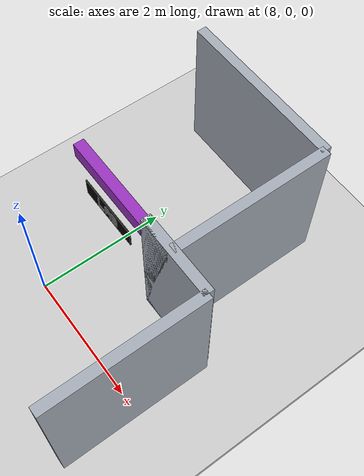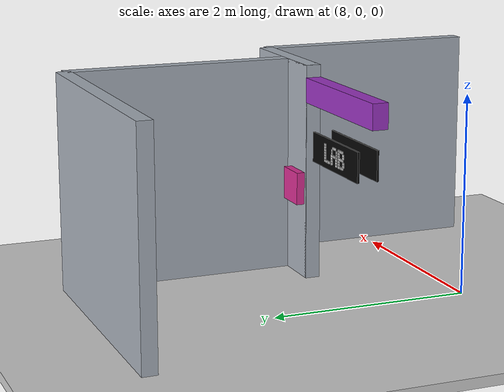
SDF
<sdf version="1.9">
 <world name="default">
  <model name="ground_plane">
   <static>true</static>
   <pose>5.15 0 -0.05 0 0 0</pose>
   <link name="body">
    <collision name="collision"><geometry><box><size>14.3 12 0.1</size></box></geometry></collision>
    <visual name="visual">
     <geometry><box><size>14.3 12 0.1</size></box></geometry>
     <material><ambient>0.8 0.8 0.8 1</ambient><diffuse>0.8 0.8 0.8 1</diffuse></material>
    </visual>
   </link>
  </model>
  <model name="end_wall">
   <static>true</static>
   <pose>10.3 0 1.1 0 0 0</pose>
   <link name="body">
    <collision name="collision"><geometry><box><size>0.15 2.3 2.2</size></box></geometry></collision>
    <visual name="visual">
     <geometry><box><size>0.15 2.3 2.2</size></box></geometry>
     <material><ambient>0.65 0.68 0.72 1</ambient><diffuse>0.65 0.68 0.72 1</diffuse></material>
    </visual>
   </link>
  </model>
  <model name="room_1_2_1">
   <static>true</static>
   <pose>9.600000000000001 2.3499999999999996 1.1 0 0 0</pose>
   <link name="body">
    <collision name="collision"><geometry><box><size>0.15 2.4 2.2</size></box></geometry></collision>
    <visual name="visual">
     <geometry><box><size>0.15 2.4 2.2</size></box></geometry>
     <material><ambient>0.65 0.68 0.72 1</ambient><diffuse>0.65 0.68 0.72 1</diffuse></material>
    </visual>
   </link>
  </model>
  <model name="room_end_1_2">
   <static>true</static>
   <pose>8.3 3.55 1.1 0 0 0</pose>
   <link name="body">
    <collision name="collision"><geometry><box><size>2.6 0.15 2.2</size></box></geometry></collision>
    <visual name="visual">
     <geometry><box><size>2.6 0.15 2.2</size></box></geometry>
     <material><ambient>0.65 0.68 0.72 1</ambient><diffuse>0.65 0.68 0.72 1</diffuse></material>
    </visual>
   </link>
  </model>
  <model name="jamb_1_2_1">
   <static>true</static>
   <pose>9.325000000000001 1.15 1.1 0 0 0</pose>
   <link name="body">
    <collision name="collision"><geometry><box><size>0.55 0.15 2.2</size></box></geometry></collision>
    <visual name="visual">
     <geometry><box><size>0.55 0.15 2.2</size></box></geometry>
     <material><ambient>0.65 0.68 0.72 1</ambient><diffuse>0.65 0.68 0.72 1</diffuse></material>
    </visual>
   </link>
  </model>
  <model name="hall_end_1">
   <static>true</static>
   <pose>9.675 1.15 1.1 0 0 0</pose>
   <link name="body">
    <collision name="collision"><geometry><box><size>1.25 0.15 2.2</size></box></geometry></collision>
    <visual name="visual">
     <geometry><box><size>1.25 0.15 2.2</size></box></geometry>
     <material><ambient>0.65 0.68 0.72 1</ambient><diffuse>0.65 0.68 0.72 1</diffuse></material>
    </visual>
   </link>
  </model>
  <model name="r3geo_base_r009_left_2_lintel">
   <static>true</static>
   <pose>8.3 1.15 1.95 0 0 0</pose>
   <link name="body">
    <collision name="collision"><geometry><box><size>1.5 0.16 0.25</size></box></geometry></collision>
    <visual name="visual">
     <geometry><box><size>1.5 0.16 0.25</size></box></geometry>
     <material><ambient>0.6 0.2 0.75 1</ambient><diffuse>0.6 0.2 0.75 1</diffuse></material>
    </visual>
   </link>
  </model>
  <model name="r3geo_base_r009_left_2_entrance_sign">
   <static>true</static>
   <pose>8.83 1.45 1.05 0 0 0</pose>
   <link name="body">
    <visual name="visual">
     <geometry><box><size>0.32 0.08 0.32</size></box></geometry>
     <material><ambient>0.84 0.18 0.57 1</ambient><diffuse>0.84 0.18 0.57 1</diffuse></material>
    </visual>
   </link>
  </model>
  <model name="readable_r3geo_base_r009_left_2_entrance_corridor">
   <static>true</static>
   <pose>8.3 1.05 1.43 0 0 0</pose>
   <link name="lettering">
    <visual name="backboard">
     <geometry><box><size>1.02 0.018 0.3</size></box></geometry>
     <material>
      <ambient>.015 .015 .015 1</ambient>
      <diffuse>.015 .015 .015 1</diffuse>
      <emissive>.015 .015 .015 1</emissive>
     </material>
     <cast_shadows>false</cast_shadows>
    </visual>
    <visual name="letter_0_0_0">
     <pose>-0.208 -0.014 0.078 0 0 0</pose>
     <geometry><box><size>0.024439999999999996 0.008 0.024439999999999996</size></box></geometry>
     <material>
      <ambient>.96 .96 .96 1</ambient>
      <diffuse>.96 .96 .96 1</diffuse>
      <emissive>.96 .96 .96 1</emissive>
     </material>
     <cast_shadows>false</cast_shadows>
    </visual>
    <visual name="letter_0_1_0">
     <pose>-0.208 -0.014 0.052 0 0 0</pose>
     <geometry><box><size>0.024439999999999996 0.008 0.024439999999999996</size></box></geometry>
     <material>
      <ambient>.96 .96 .96 1</ambient>
      <diffuse>.96 .96 .96 1</diffuse>
      <emissive>.96 .96 .96 1</emissive>
     </material>
     <cast_shadows>false</cast_shadows>
    </visual>
    <visual name="letter_0_2_0">
     <pose>-0.208 -0.014 0.026 0 0 0</pose>
     <geometry><box><size>0.024439999999999996 0.008 0.024439999999999996</size></box></geometry>
     <material>
      <ambient>.96 .96 .96 1</ambient>
      <diffuse>.96 .96 .96 1</diffuse>
      <emissive>.96 .96 .96 1</emissive>
     </material>
     <cast_shadows>false</cast_shadows>
    </visual>
    <visual name="letter_0_3_0">
     <pose>-0.208 -0.014 0 0 0 0</pose>
     <geometry><box><size>0.024439999999999996 0.008 0.024439999999999996</size></box></geometry>
     <material>
      <ambient>.96 .96 .96 1</ambient>
      <diffuse>.96 .96 .96 1</diffuse>
      <emissive>.96 .96 .96 1</emissive>
     </material>
     <cast_shadows>false</cast_shadows>
    </visual>
    <visual name="letter_0_4_0">
     <pose>-0.208 -0.014 -0.026 0 0 0</pose>
     <geometry><box><size>0.024439999999999996 0.008 0.024439999999999996</size></box></geometry>
     <material>
      <ambient>.96 .96 .96 1</ambient>
      <diffuse>.96 .96 .96 1</diffuse>
      <emissive>.96 .96 .96 1</emissive>
     </material>
     <cast_shadows>false</cast_shadows>
    </visual>
    <visual name="letter_0_5_0">
     <pose>-0.208 -0.014 -0.052 0 0 0</pose>
     <geometry><box><size>0.024439999999999996 0.008 0.024439999999999996</size></box></geometry>
     <material>
      <ambient>.96 .96 .96 1</ambient>
      <diffuse>.96 .96 .96 1</diffuse>
      <emissive>.96 .96 .96 1</emissive>
     </material>
     <cast_shadows>false</cast_shadows>
    </visual>
    <visual name="letter_0_6_0">
     <pose>-0.208 -0.014 -0.078 0 0 0</pose>
     <geometry><box><size>0.024439999999999996 0.008 0.024439999999999996</size></box></geometry>
     <material>
      <ambient>.96 .96 .96 1</ambient>
      <diffuse>.96 .96 .96 1</diffuse>
      <emissive>.96 .96 .96 1</emissive>
     </material>
     <cast_shadows>false</cast_shadows>
    </visual>
    <visual name="letter_0_6_1">
     <pose>-0.182 -0.014 -0.078 0 0 0</pose>
     <geometry><box><size>0.024439999999999996 0.008 0.024439999999999996</size></box></geometry>
     <material>
      <ambient>.96 .96 .96 1</ambient>
      <diffuse>.96 .96 .96 1</diffuse>
      <emissive>.96 .96 .96 1</emissive>
     </material>
     <cast_shadows>false</cast_shadows>
    </visual>
    <visual name="letter_0_6_2">
     <pose>-0.156 -0.014 -0.078 0 0 0</pose>
     <geometry><box><size>0.024439999999999996 0.008 0.024439999999999996</size></box></geometry>
     <material>
      <ambient>.96 .96 .96 1</ambient>
      <diffuse>.96 .96 .96 1</diffuse>
      <emissive>.96 .96 .96 1</emissive>
     </material>
     <cast_shadows>false</cast_shadows>
    </visual>
    <visual name="letter_0_6_3">
     <pose>-0.13 -0.014 -0.078 0 0 0</pose>
     <geometry><box><size>0.024439999999999996 0.008 0.024439999999999996</size></box></geometry>
     <material>
      <ambient>.96 .96 .96 1</ambient>
      <diffuse>.96 .96 .96 1</diffuse>
      <emissive>.96 .96 .96 1</emissive>
     </material>
     <cast_shadows>false</cast_shadows>
    </visual>
    <visual name="letter_0_6_4">
     <pose>-0.104 -0.014 -0.078 0 0 0</pose>
     <geometry><box><size>0.024439999999999996 0.008 0.024439999999999996</size></box></geometry>
     <material>
      <ambient>.96 .96 .96 1</ambient>
      <diffuse>.96 .96 .96 1</diffuse>
      <emissive>.96 .96 .96 1</emissive>
     </material>
     <cast_shadows>false</cast_shadows>
    </visual>
    <visual name="letter_1_0_1">
     <pose>-0.026 -0.014 0.078 0 0 0</pose>
     <geometry><box><size>0.024439999999999996 0.008 0.024439999999999996</size></box></geometry>
     <material>
      <ambient>.96 .96 .96 1</ambient>
      <diffuse>.96 .96 .96 1</diffuse>
      <emissive>.96 .96 .96 1</emissive>
     </material>
     <cast_shadows>false</cast_shadows>
    </visual>
    <visual name="letter_1_0_2">
     <pose>0 -0.014 0.078 0 0 0</pose>
     <geometry><box><size>0.024439999999999996 0.008 0.024439999999999996</size></box></geometry>
     <material>
      <ambient>.96 .96 .96 1</ambient>
      <diffuse>.96 .96 .96 1</diffuse>
      <emissive>.96 .96 .96 1</emissive>
     </material>
     <cast_shadows>false</cast_shadows>
    </visual>
    <visual name="letter_1_0_3">
     <pose>0.026 -0.014 0.078 0 0 0</pose>
     <geometry><box><size>0.024439999999999996 0.008 0.024439999999999996</size></box></geometry>
     <material>
      <ambient>.96 .96 .96 1</ambient>
      <diffuse>.96 .96 .96 1</diffuse>
      <emissive>.96 .96 .96 1</emissive>
     </material>
     <cast_shadows>false</cast_shadows>
    </visual>
    <visual name="letter_1_1_0">
     <pose>-0.052 -0.014 0.052 0 0 0</pose>
     <geometry><box><size>0.024439999999999996 0.008 0.024439999999999996</size></box></geometry>
     <material>
      <ambient>.96 .96 .96 1</ambient>
      <diffuse>.96 .96 .96 1</diffuse>
      <emissive>.96 .96 .96 1</emissive>
     </material>
     <cast_shadows>false</cast_shadows>
    </visual>
    <visual name="letter_1_1_4">
     <pose>0.052 -0.014 0.052 0 0 0</pose>
     <geometry><box><size>0.024439999999999996 0.008 0.024439999999999996</size></box></geometry>
     <material>
      <ambient>.96 .96 .96 1</ambient>
      <diffuse>.96 .96 .96 1</diffuse>
      <emissive>.96 .96 .96 1</emissive>
     </material>
     <cast_shadows>false</cast_shadows>
    </visual>
    <visual name="letter_1_2_0">
     <pose>-0.052 -0.014 0.026 0 0 0</pose>
     <geometry><box><size>0.024439999999999996 0.008 0.024439999999999996</size></box></geometry>
     <material>
      <ambient>.96 .96 .96 1</ambient>
      <diffuse>.96 .96 .96 1</diffuse>
      <emissive>.96 .96 .96 1</emissive>
     </material>
     <cast_shadows>false</cast_shadows>
    </visual>
    <visual name="letter_1_2_4">
     <pose>0.052 -0.014 0.026 0 0 0</pose>
     <geometry><box><size>0.024439999999999996 0.008 0.024439999999999996</size></box></geometry>
     <material>
      <ambient>.96 .96 .96 1</ambient>
      <diffuse>.96 .96 .96 1</diffuse>
      <emissive>.96 .96 .96 1</emissive>
     </material>
     <cast_shadows>false</cast_shadows>
    </visual>
    <visual name="letter_1_3_0">
     <pose>-0.052 -0.014 0 0 0 0</pose>
     <geometry><box><size>0.024439999999999996 0.008 0.024439999999999996</size></box></geometry>
     <material>
      <ambient>.96 .96 .96 1</ambient>
      <diffuse>.96 .96 .96 1</diffuse>
      <emissive>.96 .96 .96 1</emissive>
     </material>
     <cast_shadows>false</cast_shadows>
    </visual>
    <visual name="letter_1_3_1">
     <pose>-0.026 -0.014 0 0 0 0</pose>
     <geometry><box><size>0.024439999999999996 0.008 0.024439999999999996</size></box></geometry>
     <material>
      <ambient>.96 .96 .96 1</ambient>
      <diffuse>.96 .96 .96 1</diffuse>
      <emissive>.96 .96 .96 1</emissive>
     </material>
     <cast_shadows>false</cast_shadows>
    </visual>
    <visual name="letter_1_3_2">
     <pose>0 -0.014 0 0 0 0</pose>
     <geometry><box><size>0.024439999999999996 0.008 0.024439999999999996</size></box></geometry>
     <material>
      <ambient>.96 .96 .96 1</ambient>
      <diffuse>.96 .96 .96 1</diffuse>
      <emissive>.96 .96 .96 1</emissive>
     </material>
     <cast_shadows>false</cast_shadows>
    </visual>
    <visual name="letter_1_3_3">
     <pose>0.026 -0.014 0 0 0 0</pose>
     <geometry><box><size>0.024439999999999996 0.008 0.024439999999999996</size></box></geometry>
     <material>
      <ambient>.96 .96 .96 1</ambient>
      <diffuse>.96 .96 .96 1</diffuse>
      <emissive>.96 .96 .96 1</emissive>
     </material>
     <cast_shadows>false</cast_shadows>
    </visual>
    <visual name="letter_1_3_4">
     <pose>0.052 -0.014 0 0 0 0</pose>
     <geometry><box><size>0.024439999999999996 0.008 0.024439999999999996</size></box></geometry>
     <material>
      <ambient>.96 .96 .96 1</ambient>
      <diffuse>.96 .96 .96 1</diffuse>
      <emissive>.96 .96 .96 1</emissive>
     </material>
     <cast_shadows>false</cast_shadows>
    </visual>
    <visual name="letter_1_4_0">
     <pose>-0.052 -0.014 -0.026 0 0 0</pose>
     <geometry><box><size>0.024439999999999996 0.008 0.024439999999999996</size></box></geometry>
     <material>
      <ambient>.96 .96 .96 1</ambient>
      <diffuse>.96 .96 .96 1</diffuse>
      <emissive>.96 .96 .96 1</emissive>
     </material>
     <cast_shadows>false</cast_shadows>
    </visual>
    <visual name="letter_1_4_4">
     <pose>0.052 -0.014 -0.026 0 0 0</pose>
     <geometry><box><size>0.024439999999999996 0.008 0.024439999999999996</size></box></geometry>
     <material>
      <ambient>.96 .96 .96 1</ambient>
      <diffuse>.96 .96 .96 1</diffuse>
      <emissive>.96 .96 .96 1</emissive>
     </material>
     <cast_shadows>false</cast_shadows>
    </visual>
    <visual name="letter_1_5_0">
     <pose>-0.052 -0.014 -0.052 0 0 0</pose>
     <geometry><box><size>0.024439999999999996 0.008 0.024439999999999996</size></box></geometry>
     <material>
      <ambient>.96 .96 .96 1</ambient>
      <diffuse>.96 .96 .96 1</diffuse>
      <emissive>.96 .96 .96 1</emissive>
     </material>
     <cast_shadows>false</cast_shadows>
    </visual>
    <visual name="letter_1_5_4">
     <pose>0.052 -0.014 -0.052 0 0 0</pose>
     <geometry><box><size>0.024439999999999996 0.008 0.024439999999999996</size></box></geometry>
     <material>
      <ambient>.96 .96 .96 1</ambient>
      <diffuse>.96 .96 .96 1</diffuse>
      <emissive>.96 .96 .96 1</emissive>
     </material>
     <cast_shadows>false</cast_shadows>
    </visual>
    <visual name="letter_1_6_0">
     <pose>-0.052 -0.014 -0.078 0 0 0</pose>
     <geometry><box><size>0.024439999999999996 0.008 0.024439999999999996</size></box></geometry>
     <material>
      <ambient>.96 .96 .96 1</ambient>
      <diffuse>.96 .96 .96 1</diffuse>
      <emissive>.96 .96 .96 1</emissive>
     </material>
     <cast_shadows>false</cast_shadows>
    </visual>
    <visual name="letter_1_6_4">
     <pose>0.052 -0.014 -0.078 0 0 0</pose>
     <geometry><box><size>0.024439999999999996 0.008 0.024439999999999996</size></box></geometry>
     <material>
      <ambient>.96 .96 .96 1</ambient>
      <diffuse>.96 .96 .96 1</diffuse>
      <emissive>.96 .96 .96 1</emissive>
     </material>
     <cast_shadows>false</cast_shadows>
    </visual>
    <visual name="letter_2_0_0">
     <pose>0.104 -0.014 0.078 0 0 0</pose>
     <geometry><box><size>0.024439999999999996 0.008 0.024439999999999996</size></box></geometry>
     <material>
      <ambient>.96 .96 .96 1</ambient>
      <diffuse>.96 .96 .96 1</diffuse>
      <emissive>.96 .96 .96 1</emissive>
     </material>
     <cast_shadows>false</cast_shadows>
    </visual>
    <visual name="letter_2_0_1">
     <pose>0.13 -0.014 0.078 0 0 0</pose>
     <geometry><box><size>0.024439999999999996 0.008 0.024439999999999996</size></box></geometry>
     <material>
      <ambient>.96 .96 .96 1</ambient>
      <diffuse>.96 .96 .96 1</diffuse>
      <emissive>.96 .96 .96 1</emissive>
     </material>
     <cast_shadows>false</cast_shadows>
    </visual>
    <visual name="letter_2_0_2">
     <pose>0.156 -0.014 0.078 0 0 0</pose>
     <geometry><box><size>0.024439999999999996 0.008 0.024439999999999996</size></box></geometry>
     <material>
      <ambient>.96 .96 .96 1</ambient>
      <diffuse>.96 .96 .96 1</diffuse>
      <emissive>.96 .96 .96 1</emissive>
     </material>
     <cast_shadows>false</cast_shadows>
    </visual>
    <visual name="letter_2_0_3">
     <pose>0.182 -0.014 0.078 0 0 0</pose>
     <geometry><box><size>0.024439999999999996 0.008 0.024439999999999996</size></box></geometry>
     <material>
      <ambient>.96 .96 .96 1</ambient>
      <diffuse>.96 .96 .96 1</diffuse>
      <emissive>.96 .96 .96 1</emissive>
     </material>
     <cast_shadows>false</cast_shadows>
    </visual>
    <visual name="letter_2_1_0">
     <pose>0.104 -0.014 0.052 0 0 0</pose>
     <geometry><box><size>0.024439999999999996 0.008 0.024439999999999996</size></box></geometry>
     <material>
      <ambient>.96 .96 .96 1</ambient>
      <diffuse>.96 .96 .96 1</diffuse>
      <emissive>.96 .96 .96 1</emissive>
     </material>
     <cast_shadows>false</cast_shadows>
    </visual>
    <visual name="letter_2_1_4">
     <pose>0.208 -0.014 0.052 0 0 0</pose>
     <geometry><box><size>0.024439999999999996 0.008 0.024439999999999996</size></box></geometry>
     <material>
      <ambient>.96 .96 .96 1</ambient>
      <diffuse>.96 .96 .96 1</diffuse>
      <emissive>.96 .96 .96 1</emissive>
     </material>
     <cast_shadows>false</cast_shadows>
    </visual>
    <visual name="letter_2_2_0">
     <pose>0.104 -0.014 0.026 0 0 0</pose>
     <geometry><box><size>0.024439999999999996 0.008 0.024439999999999996</size></box></geometry>
     <material>
      <ambient>.96 .96 .96 1</ambient>
      <diffuse>.96 .96 .96 1</diffuse>
      <emissive>.96 .96 .96 1</emissive>
     </material>
     <cast_shadows>false</cast_shadows>
    </visual>
    <visual name="letter_2_2_4">
     <pose>0.208 -0.014 0.026 0 0 0</pose>
     <geometry><box><size>0.024439999999999996 0.008 0.024439999999999996</size></box></geometry>
     <material>
      <ambient>.96 .96 .96 1</ambient>
      <diffuse>.96 .96 .96 1</diffuse>
      <emissive>.96 .96 .96 1</emissive>
     </material>
     <cast_shadows>false</cast_shadows>
    </visual>
    <visual name="letter_2_3_0">
     <pose>0.104 -0.014 0 0 0 0</pose>
     <geometry><box><size>0.024439999999999996 0.008 0.024439999999999996</size></box></geometry>
     <material>
      <ambient>.96 .96 .96 1</ambient>
      <diffuse>.96 .96 .96 1</diffuse>
      <emissive>.96 .96 .96 1</emissive>
     </material>
     <cast_shadows>false</cast_shadows>
    </visual>
    <visual name="letter_2_3_1">
     <pose>0.13 -0.014 0 0 0 0</pose>
     <geometry><box><size>0.024439999999999996 0.008 0.024439999999999996</size></box></geometry>
     <material>
      <ambient>.96 .96 .96 1</ambient>
      <diffuse>.96 .96 .96 1</diffuse>
      <emissive>.96 .96 .96 1</emissive>
     </material>
     <cast_shadows>false</cast_shadows>
    </visual>
    <visual name="letter_2_3_2">
     <pose>0.156 -0.014 0 0 0 0</pose>
     <geometry><box><size>0.024439999999999996 0.008 0.024439999999999996</size></box></geometry>
     <material>
      <ambient>.96 .96 .96 1</ambient>
      <diffuse>.96 .96 .96 1</diffuse>
      <emissive>.96 .96 .96 1</emissive>
     </material>
     <cast_shadows>false</cast_shadows>
    </visual>
    <visual name="letter_2_3_3">
     <pose>0.182 -0.014 0 0 0 0</pose>
     <geometry><box><size>0.024439999999999996 0.008 0.024439999999999996</size></box></geometry>
     <material>
      <ambient>.96 .96 .96 1</ambient>
      <diffuse>.96 .96 .96 1</diffuse>
      <emissive>.96 .96 .96 1</emissive>
     </material>
     <cast_shadows>false</cast_shadows>
    </visual>
    <visual name="letter_2_4_0">
     <pose>0.104 -0.014 -0.026 0 0 0</pose>
     <geometry><box><size>0.024439999999999996 0.008 0.024439999999999996</size></box></geometry>
     <material>
      <ambient>.96 .96 .96 1</ambient>
      <diffuse>.96 .96 .96 1</diffuse>
      <emissive>.96 .96 .96 1</emissive>
     </material>
     <cast_shadows>false</cast_shadows>
    </visual>
    <visual name="letter_2_4_4">
     <pose>0.208 -0.014 -0.026 0 0 0</pose>
     <geometry><box><size>0.024439999999999996 0.008 0.024439999999999996</size></box></geometry>
     <material>
      <ambient>.96 .96 .96 1</ambient>
      <diffuse>.96 .96 .96 1</diffuse>
      <emissive>.96 .96 .96 1</emissive>
     </material>
     <cast_shadows>false</cast_shadows>
    </visual>
    <visual name="letter_2_5_0">
     <pose>0.104 -0.014 -0.052 0 0 0</pose>
     <geometry><box><size>0.024439999999999996 0.008 0.024439999999999996</size></box></geometry>
     <material>
      <ambient>.96 .96 .96 1</ambient>
      <diffuse>.96 .96 .96 1</diffuse>
      <emissive>.96 .96 .96 1</emissive>
     </material>
     <cast_shadows>false</cast_shadows>
    </visual>
    <visual name="letter_2_5_4">
     <pose>0.208 -0.014 -0.052 0 0 0</pose>
     <geometry><box><size>0.024439999999999996 0.008 0.024439999999999996</size></box></geometry>
     <material>
      <ambient>.96 .96 .96 1</ambient>
      <diffuse>.96 .96 .96 1</diffuse>
      <emissive>.96 .96 .96 1</emissive>
     </material>
     <cast_shadows>false</cast_shadows>
    </visual>
    <visual name="letter_2_6_0">
     <pose>0.104 -0.014 -0.078 0 0 0</pose>
     <geometry><box><size>0.024439999999999996 0.008 0.024439999999999996</size></box></geometry>
     <material>
      <ambient>.96 .96 .96 1</ambient>
      <diffuse>.96 .96 .96 1</diffuse>
      <emissive>.96 .96 .96 1</emissive>
     </material>
     <cast_shadows>false</cast_shadows>
    </visual>
    <visual name="letter_2_6_1">
     <pose>0.13 -0.014 -0.078 0 0 0</pose>
     <geometry><box><size>0.024439999999999996 0.008 0.024439999999999996</size></box></geometry>
     <material>
      <ambient>.96 .96 .96 1</ambient>
      <diffuse>.96 .96 .96 1</diffuse>
      <emissive>.96 .96 .96 1</emissive>
     </material>
     <cast_shadows>false</cast_shadows>
    </visual>
    <visual name="letter_2_6_2">
     <pose>0.156 -0.014 -0.078 0 0 0</pose>
     <geometry><box><size>0.024439999999999996 0.008 0.024439999999999996</size></box></geometry>
     <material>
      <ambient>.96 .96 .96 1</ambient>
      <diffuse>.96 .96 .96 1</diffuse>
      <emissive>.96 .96 .96 1</emissive>
     </material>
     <cast_shadows>false</cast_shadows>
    </visual>
    <visual name="letter_2_6_3">
     <pose>0.182 -0.014 -0.078 0 0 0</pose>
     <geometry><box><size>0.024439999999999996 0.008 0.024439999999999996</size></box></geometry>
     <material>
      <ambient>.96 .96 .96 1</ambient>
      <diffuse>.96 .96 .96 1</diffuse>
      <emissive>.96 .96 .96 1</emissive>
     </material>
     <cast_shadows>false</cast_shadows>
    </visual>
   </link>
  </model>
  <model name="readable_r3geo_base_r009_left_2_entrance_room">
   <static>true</static>
   <pose>8.3 1.25 1.43 0 0 3.14159265359</pose>
   <link name="lettering">
    <visual name="backboard">
     <geometry><box><size>1.02 0.018 0.3</size></box></geometry>
     <material>
      <ambient>.015 .015 .015 1</ambient>
      <diffuse>.015 .015 .015 1</diffuse>
      <emissive>.015 .015 .015 1</emissive>
     </material>
     <cast_shadows>false</cast_shadows>
    </visual>
    <visual name="letter_0_0_0">
     <pose>-0.208 -0.014 0.078 0 0 0</pose>
     <geometry><box><size>0.024439999999999996 0.008 0.024439999999999996</size></box></geometry>
     <material>
      <ambient>.96 .96 .96 1</ambient>
      <diffuse>.96 .96 .96 1</diffuse>
      <emissive>.96 .96 .96 1</emissive>
     </material>
     <cast_shadows>false</cast_shadows>
    </visual>
    <visual name="letter_0_1_0">
     <pose>-0.208 -0.014 0.052 0 0 0</pose>
     <geometry><box><size>0.024439999999999996 0.008 0.024439999999999996</size></box></geometry>
     <material>
      <ambient>.96 .96 .96 1</ambient>
      <diffuse>.96 .96 .96 1</diffuse>
      <emissive>.96 .96 .96 1</emissive>
     </material>
     <cast_shadows>false</cast_shadows>
    </visual>
    <visual name="letter_0_2_0">
     <pose>-0.208 -0.014 0.026 0 0 0</pose>
     <geometry><box><size>0.024439999999999996 0.008 0.024439999999999996</size></box></geometry>
     <material>
      <ambient>.96 .96 .96 1</ambient>
      <diffuse>.96 .96 .96 1</diffuse>
      <emissive>.96 .96 .96 1</emissive>
     </material>
     <cast_shadows>false</cast_shadows>
    </visual>
    <visual name="letter_0_3_0">
     <pose>-0.208 -0.014 0 0 0 0</pose>
     <geometry><box><size>0.024439999999999996 0.008 0.024439999999999996</size></box></geometry>
     <material>
      <ambient>.96 .96 .96 1</ambient>
      <diffuse>.96 .96 .96 1</diffuse>
      <emissive>.96 .96 .96 1</emissive>
     </material>
     <cast_shadows>false</cast_shadows>
    </visual>
    <visual name="letter_0_4_0">
     <pose>-0.208 -0.014 -0.026 0 0 0</pose>
     <geometry><box><size>0.024439999999999996 0.008 0.024439999999999996</size></box></geometry>
     <material>
      <ambient>.96 .96 .96 1</ambient>
      <diffuse>.96 .96 .96 1</diffuse>
      <emissive>.96 .96 .96 1</emissive>
     </material>
     <cast_shadows>false</cast_shadows>
    </visual>
    <visual name="letter_0_5_0">
     <pose>-0.208 -0.014 -0.052 0 0 0</pose>
     <geometry><box><size>0.024439999999999996 0.008 0.024439999999999996</size></box></geometry>
     <material>
      <ambient>.96 .96 .96 1</ambient>
      <diffuse>.96 .96 .96 1</diffuse>
      <emissive>.96 .96 .96 1</emissive>
     </material>
     <cast_shadows>false</cast_shadows>
    </visual>
    <visual name="letter_0_6_0">
     <pose>-0.208 -0.014 -0.078 0 0 0</pose>
     <geometry><box><size>0.024439999999999996 0.008 0.024439999999999996</size></box></geometry>
     <material>
      <ambient>.96 .96 .96 1</ambient>
      <diffuse>.96 .96 .96 1</diffuse>
      <emissive>.96 .96 .96 1</emissive>
     </material>
     <cast_shadows>false</cast_shadows>
    </visual>
    <visual name="letter_0_6_1">
     <pose>-0.182 -0.014 -0.078 0 0 0</pose>
     <geometry><box><size>0.024439999999999996 0.008 0.024439999999999996</size></box></geometry>
     <material>
      <ambient>.96 .96 .96 1</ambient>
      <diffuse>.96 .96 .96 1</diffuse>
      <emissive>.96 .96 .96 1</emissive>
     </material>
     <cast_shadows>false</cast_shadows>
    </visual>
    <visual name="letter_0_6_2">
     <pose>-0.156 -0.014 -0.078 0 0 0</pose>
     <geometry><box><size>0.024439999999999996 0.008 0.024439999999999996</size></box></geometry>
     <material>
      <ambient>.96 .96 .96 1</ambient>
      <diffuse>.96 .96 .96 1</diffuse>
      <emissive>.96 .96 .96 1</emissive>
     </material>
     <cast_shadows>false</cast_shadows>
    </visual>
    <visual name="letter_0_6_3">
     <pose>-0.13 -0.014 -0.078 0 0 0</pose>
     <geometry><box><size>0.024439999999999996 0.008 0.024439999999999996</size></box></geometry>
     <material>
      <ambient>.96 .96 .96 1</ambient>
      <diffuse>.96 .96 .96 1</diffuse>
      <emissive>.96 .96 .96 1</emissive>
     </material>
     <cast_shadows>false</cast_shadows>
    </visual>
    <visual name="letter_0_6_4">
     <pose>-0.104 -0.014 -0.078 0 0 0</pose>
     <geometry><box><size>0.024439999999999996 0.008 0.024439999999999996</size></box></geometry>
     <material>
      <ambient>.96 .96 .96 1</ambient>
      <diffuse>.96 .96 .96 1</diffuse>
      <emissive>.96 .96 .96 1</emissive>
     </material>
     <cast_shadows>false</cast_shadows>
    </visual>
    <visual name="letter_1_0_1">
     <pose>-0.026 -0.014 0.078 0 0 0</pose>
     <geometry><box><size>0.024439999999999996 0.008 0.024439999999999996</size></box></geometry>
     <material>
      <ambient>.96 .96 .96 1</ambient>
      <diffuse>.96 .96 .96 1</diffuse>
      <emissive>.96 .96 .96 1</emissive>
     </material>
     <cast_shadows>false</cast_shadows>
    </visual>
    <visual name="letter_1_0_2">
     <pose>0 -0.014 0.078 0 0 0</pose>
     <geometry><box><size>0.024439999999999996 0.008 0.024439999999999996</size></box></geometry>
     <material>
      <ambient>.96 .96 .96 1</ambient>
      <diffuse>.96 .96 .96 1</diffuse>
      <emissive>.96 .96 .96 1</emissive>
     </material>
     <cast_shadows>false</cast_shadows>
    </visual>
    <visual name="letter_1_0_3">
     <pose>0.026 -0.014 0.078 0 0 0</pose>
     <geometry><box><size>0.024439999999999996 0.008 0.024439999999999996</size></box></geometry>
     <material>
      <ambient>.96 .96 .96 1</ambient>
      <diffuse>.96 .96 .96 1</diffuse>
      <emissive>.96 .96 .96 1</emissive>
     </material>
     <cast_shadows>false</cast_shadows>
    </visual>
    <visual name="letter_1_1_0">
     <pose>-0.052 -0.014 0.052 0 0 0</pose>
     <geometry><box><size>0.024439999999999996 0.008 0.024439999999999996</size></box></geometry>
     <material>
      <ambient>.96 .96 .96 1</ambient>
      <diffuse>.96 .96 .96 1</diffuse>
      <emissive>.96 .96 .96 1</emissive>
     </material>
     <cast_shadows>false</cast_shadows>
    </visual>
    <visual name="letter_1_1_4">
     <pose>0.052 -0.014 0.052 0 0 0</pose>
     <geometry><box><size>0.024439999999999996 0.008 0.024439999999999996</size></box></geometry>
     <material>
      <ambient>.96 .96 .96 1</ambient>
      <diffuse>.96 .96 .96 1</diffuse>
      <emissive>.96 .96 .96 1</emissive>
     </material>
     <cast_shadows>false</cast_shadows>
    </visual>
    <visual name="letter_1_2_0">
     <pose>-0.052 -0.014 0.026 0 0 0</pose>
     <geometry><box><size>0.024439999999999996 0.008 0.024439999999999996</size></box></geometry>
     <material>
      <ambient>.96 .96 .96 1</ambient>
      <diffuse>.96 .96 .96 1</diffuse>
      <emissive>.96 .96 .96 1</emissive>
     </material>
     <cast_shadows>false</cast_shadows>
    </visual>
    <visual name="letter_1_2_4">
     <pose>0.052 -0.014 0.026 0 0 0</pose>
     <geometry><box><size>0.024439999999999996 0.008 0.024439999999999996</size></box></geometry>
     <material>
      <ambient>.96 .96 .96 1</ambient>
      <diffuse>.96 .96 .96 1</diffuse>
      <emissive>.96 .96 .96 1</emissive>
     </material>
     <cast_shadows>false</cast_shadows>
    </visual>
    <visual name="letter_1_3_0">
     <pose>-0.052 -0.014 0 0 0 0</pose>
     <geometry><box><size>0.024439999999999996 0.008 0.024439999999999996</size></box></geometry>
     <material>
      <ambient>.96 .96 .96 1</ambient>
      <diffuse>.96 .96 .96 1</diffuse>
      <emissive>.96 .96 .96 1</emissive>
     </material>
     <cast_shadows>false</cast_shadows>
    </visual>
    <visual name="letter_1_3_1">
     <pose>-0.026 -0.014 0 0 0 0</pose>
     <geometry><box><size>0.024439999999999996 0.008 0.024439999999999996</size></box></geometry>
     <material>
      <ambient>.96 .96 .96 1</ambient>
      <diffuse>.96 .96 .96 1</diffuse>
      <emissive>.96 .96 .96 1</emissive>
     </material>
     <cast_shadows>false</cast_shadows>
    </visual>
    <visual name="letter_1_3_2">
     <pose>0 -0.014 0 0 0 0</pose>
     <geometry><box><size>0.024439999999999996 0.008 0.024439999999999996</size></box></geometry>
     <material>
      <ambient>.96 .96 .96 1</ambient>
      <diffuse>.96 .96 .96 1</diffuse>
      <emissive>.96 .96 .96 1</emissive>
     </material>
     <cast_shadows>false</cast_shadows>
    </visual>
    <visual name="letter_1_3_3">
     <pose>0.026 -0.014 0 0 0 0</pose>
     <geometry><box><size>0.024439999999999996 0.008 0.024439999999999996</size></box></geometry>
     <material>
      <ambient>.96 .96 .96 1</ambient>
      <diffuse>.96 .96 .96 1</diffuse>
      <emissive>.96 .96 .96 1</emissive>
     </material>
     <cast_shadows>false</cast_shadows>
    </visual>
    <visual name="letter_1_3_4">
     <pose>0.052 -0.014 0 0 0 0</pose>
     <geometry><box><size>0.024439999999999996 0.008 0.024439999999999996</size></box></geometry>
     <material>
      <ambient>.96 .96 .96 1</ambient>
      <diffuse>.96 .96 .96 1</diffuse>
      <emissive>.96 .96 .96 1</emissive>
     </material>
     <cast_shadows>false</cast_shadows>
    </visual>
    <visual name="letter_1_4_0">
     <pose>-0.052 -0.014 -0.026 0 0 0</pose>
     <geometry><box><size>0.024439999999999996 0.008 0.024439999999999996</size></box></geometry>
     <material>
      <ambient>.96 .96 .96 1</ambient>
      <diffuse>.96 .96 .96 1</diffuse>
      <emissive>.96 .96 .96 1</emissive>
     </material>
     <cast_shadows>false</cast_shadows>
    </visual>
    <visual name="letter_1_4_4">
     <pose>0.052 -0.014 -0.026 0 0 0</pose>
     <geometry><box><size>0.024439999999999996 0.008 0.024439999999999996</size></box></geometry>
     <material>
      <ambient>.96 .96 .96 1</ambient>
      <diffuse>.96 .96 .96 1</diffuse>
      <emissive>.96 .96 .96 1</emissive>
     </material>
     <cast_shadows>false</cast_shadows>
    </visual>
    <visual name="letter_1_5_0">
     <pose>-0.052 -0.014 -0.052 0 0 0</pose>
     <geometry><box><size>0.024439999999999996 0.008 0.024439999999999996</size></box></geometry>
     <material>
      <ambient>.96 .96 .96 1</ambient>
      <diffuse>.96 .96 .96 1</diffuse>
      <emissive>.96 .96 .96 1</emissive>
     </material>
     <cast_shadows>false</cast_shadows>
    </visual>
    <visual name="letter_1_5_4">
     <pose>0.052 -0.014 -0.052 0 0 0</pose>
     <geometry><box><size>0.024439999999999996 0.008 0.024439999999999996</size></box></geometry>
     <material>
      <ambient>.96 .96 .96 1</ambient>
      <diffuse>.96 .96 .96 1</diffuse>
      <emissive>.96 .96 .96 1</emissive>
     </material>
     <cast_shadows>false</cast_shadows>
    </visual>
    <visual name="letter_1_6_0">
     <pose>-0.052 -0.014 -0.078 0 0 0</pose>
     <geometry><box><size>0.024439999999999996 0.008 0.024439999999999996</size></box></geometry>
     <material>
      <ambient>.96 .96 .96 1</ambient>
      <diffuse>.96 .96 .96 1</diffuse>
      <emissive>.96 .96 .96 1</emissive>
     </material>
     <cast_shadows>false</cast_shadows>
    </visual>
    <visual name="letter_1_6_4">
     <pose>0.052 -0.014 -0.078 0 0 0</pose>
     <geometry><box><size>0.024439999999999996 0.008 0.024439999999999996</size></box></geometry>
     <material>
      <ambient>.96 .96 .96 1</ambient>
      <diffuse>.96 .96 .96 1</diffuse>
      <emissive>.96 .96 .96 1</emissive>
     </material>
     <cast_shadows>false</cast_shadows>
    </visual>
    <visual name="letter_2_0_0">
     <pose>0.104 -0.014 0.078 0 0 0</pose>
     <geometry><box><size>0.024439999999999996 0.008 0.024439999999999996</size></box></geometry>
     <material>
      <ambient>.96 .96 .96 1</ambient>
      <diffuse>.96 .96 .96 1</diffuse>
      <emissive>.96 .96 .96 1</emissive>
     </material>
     <cast_shadows>false</cast_shadows>
    </visual>
    <visual name="letter_2_0_1">
     <pose>0.13 -0.014 0.078 0 0 0</pose>
     <geometry><box><size>0.024439999999999996 0.008 0.024439999999999996</size></box></geometry>
     <material>
      <ambient>.96 .96 .96 1</ambient>
      <diffuse>.96 .96 .96 1</diffuse>
      <emissive>.96 .96 .96 1</emissive>
     </material>
     <cast_shadows>false</cast_shadows>
    </visual>
    <visual name="letter_2_0_2">
     <pose>0.156 -0.014 0.078 0 0 0</pose>
     <geometry><box><size>0.024439999999999996 0.008 0.024439999999999996</size></box></geometry>
     <material>
      <ambient>.96 .96 .96 1</ambient>
      <diffuse>.96 .96 .96 1</diffuse>
      <emissive>.96 .96 .96 1</emissive>
     </material>
     <cast_shadows>false</cast_shadows>
    </visual>
    <visual name="letter_2_0_3">
     <pose>0.182 -0.014 0.078 0 0 0</pose>
     <geometry><box><size>0.024439999999999996 0.008 0.024439999999999996</size></box></geometry>
     <material>
      <ambient>.96 .96 .96 1</ambient>
      <diffuse>.96 .96 .96 1</diffuse>
      <emissive>.96 .96 .96 1</emissive>
     </material>
     <cast_shadows>false</cast_shadows>
    </visual>
    <visual name="letter_2_1_0">
     <pose>0.104 -0.014 0.052 0 0 0</pose>
     <geometry><box><size>0.024439999999999996 0.008 0.024439999999999996</size></box></geometry>
     <material>
      <ambient>.96 .96 .96 1</ambient>
      <diffuse>.96 .96 .96 1</diffuse>
      <emissive>.96 .96 .96 1</emissive>
     </material>
     <cast_shadows>false</cast_shadows>
    </visual>
    <visual name="letter_2_1_4">
     <pose>0.208 -0.014 0.052 0 0 0</pose>
     <geometry><box><size>0.024439999999999996 0.008 0.024439999999999996</size></box></geometry>
     <material>
      <ambient>.96 .96 .96 1</ambient>
      <diffuse>.96 .96 .96 1</diffuse>
      <emissive>.96 .96 .96 1</emissive>
     </material>
     <cast_shadows>false</cast_shadows>
    </visual>
    <visual name="letter_2_2_0">
     <pose>0.104 -0.014 0.026 0 0 0</pose>
     <geometry><box><size>0.024439999999999996 0.008 0.024439999999999996</size></box></geometry>
     <material>
      <ambient>.96 .96 .96 1</ambient>
      <diffuse>.96 .96 .96 1</diffuse>
      <emissive>.96 .96 .96 1</emissive>
     </material>
     <cast_shadows>false</cast_shadows>
    </visual>
    <visual name="letter_2_2_4">
     <pose>0.208 -0.014 0.026 0 0 0</pose>
     <geometry><box><size>0.024439999999999996 0.008 0.024439999999999996</size></box></geometry>
     <material>
      <ambient>.96 .96 .96 1</ambient>
      <diffuse>.96 .96 .96 1</diffuse>
      <emissive>.96 .96 .96 1</emissive>
     </material>
     <cast_shadows>false</cast_shadows>
    </visual>
    <visual name="letter_2_3_0">
     <pose>0.104 -0.014 0 0 0 0</pose>
     <geometry><box><size>0.024439999999999996 0.008 0.024439999999999996</size></box></geometry>
     <material>
      <ambient>.96 .96 .96 1</ambient>
      <diffuse>.96 .96 .96 1</diffuse>
      <emissive>.96 .96 .96 1</emissive>
     </material>
     <cast_shadows>false</cast_shadows>
    </visual>
    <visual name="letter_2_3_1">
     <pose>0.13 -0.014 0 0 0 0</pose>
     <geometry><box><size>0.024439999999999996 0.008 0.024439999999999996</size></box></geometry>
     <material>
      <ambient>.96 .96 .96 1</ambient>
      <diffuse>.96 .96 .96 1</diffuse>
      <emissive>.96 .96 .96 1</emissive>
     </material>
     <cast_shadows>false</cast_shadows>
    </visual>
    <visual name="letter_2_3_2">
     <pose>0.156 -0.014 0 0 0 0</pose>
     <geometry><box><size>0.024439999999999996 0.008 0.024439999999999996</size></box></geometry>
     <material>
      <ambient>.96 .96 .96 1</ambient>
      <diffuse>.96 .96 .96 1</diffuse>
      <emissive>.96 .96 .96 1</emissive>
     </material>
     <cast_shadows>false</cast_shadows>
    </visual>
    <visual name="letter_2_3_3">
     <pose>0.182 -0.014 0 0 0 0</pose>
     <geometry><box><size>0.024439999999999996 0.008 0.024439999999999996</size></box></geometry>
     <material>
      <ambient>.96 .96 .96 1</ambient>
      <diffuse>.96 .96 .96 1</diffuse>
      <emissive>.96 .96 .96 1</emissive>
     </material>
     <cast_shadows>false</cast_shadows>
    </visual>
    <visual name="letter_2_4_0">
     <pose>0.104 -0.014 -0.026 0 0 0</pose>
     <geometry><box><size>0.024439999999999996 0.008 0.024439999999999996</size></box></geometry>
     <material>
      <ambient>.96 .96 .96 1</ambient>
      <diffuse>.96 .96 .96 1</diffuse>
      <emissive>.96 .96 .96 1</emissive>
     </material>
     <cast_shadows>false</cast_shadows>
    </visual>
    <visual name="letter_2_4_4">
     <pose>0.208 -0.014 -0.026 0 0 0</pose>
     <geometry><box><size>0.024439999999999996 0.008 0.024439999999999996</size></box></geometry>
     <material>
      <ambient>.96 .96 .96 1</ambient>
      <diffuse>.96 .96 .96 1</diffuse>
      <emissive>.96 .96 .96 1</emissive>
     </material>
     <cast_shadows>false</cast_shadows>
    </visual>
    <visual name="letter_2_5_0">
     <pose>0.104 -0.014 -0.052 0 0 0</pose>
     <geometry><box><size>0.024439999999999996 0.008 0.024439999999999996</size></box></geometry>
     <material>
      <ambient>.96 .96 .96 1</ambient>
      <diffuse>.96 .96 .96 1</diffuse>
      <emissive>.96 .96 .96 1</emissive>
     </material>
     <cast_shadows>false</cast_shadows>
    </visual>
    <visual name="letter_2_5_4">
     <pose>0.208 -0.014 -0.052 0 0 0</pose>
     <geometry><box><size>0.024439999999999996 0.008 0.024439999999999996</size></box></geometry>
     <material>
      <ambient>.96 .96 .96 1</ambient>
      <diffuse>.96 .96 .96 1</diffuse>
      <emissive>.96 .96 .96 1</emissive>
     </material>
     <cast_shadows>false</cast_shadows>
    </visual>
    <visual name="letter_2_6_0">
     <pose>0.104 -0.014 -0.078 0 0 0</pose>
     <geometry><box><size>0.024439999999999996 0.008 0.024439999999999996</size></box></geometry>
     <material>
      <ambient>.96 .96 .96 1</ambient>
      <diffuse>.96 .96 .96 1</diffuse>
      <emissive>.96 .96 .96 1</emissive>
     </material>
     <cast_shadows>false</cast_shadows>
    </visual>
    <visual name="letter_2_6_1">
     <pose>0.13 -0.014 -0.078 0 0 0</pose>
     <geometry><box><size>0.024439999999999996 0.008 0.024439999999999996</size></box></geometry>
     <material>
      <ambient>.96 .96 .96 1</ambient>
      <diffuse>.96 .96 .96 1</diffuse>
      <emissive>.96 .96 .96 1</emissive>
     </material>
     <cast_shadows>false</cast_shadows>
    </visual>
    <visual name="letter_2_6_2">
     <pose>0.156 -0.014 -0.078 0 0 0</pose>
     <geometry><box><size>0.024439999999999996 0.008 0.024439999999999996</size></box></geometry>
     <material>
      <ambient>.96 .96 .96 1</ambient>
      <diffuse>.96 .96 .96 1</diffuse>
      <emissive>.96 .96 .96 1</emissive>
     </material>
     <cast_shadows>false</cast_shadows>
    </visual>
    <visual name="letter_2_6_3">
     <pose>0.182 -0.014 -0.078 0 0 0</pose>
     <geometry><box><size>0.024439999999999996 0.008 0.024439999999999996</size></box></geometry>
     <material>
      <ambient>.96 .96 .96 1</ambient>
      <diffuse>.96 .96 .96 1</diffuse>
      <emissive>.96 .96 .96 1</emissive>
     </material>
     <cast_shadows>false</cast_shadows>
    </visual>
   </link>
  </model>
 </world>
</sdf>
